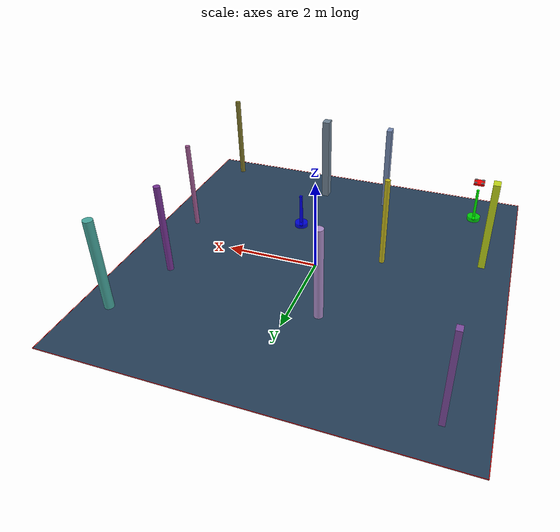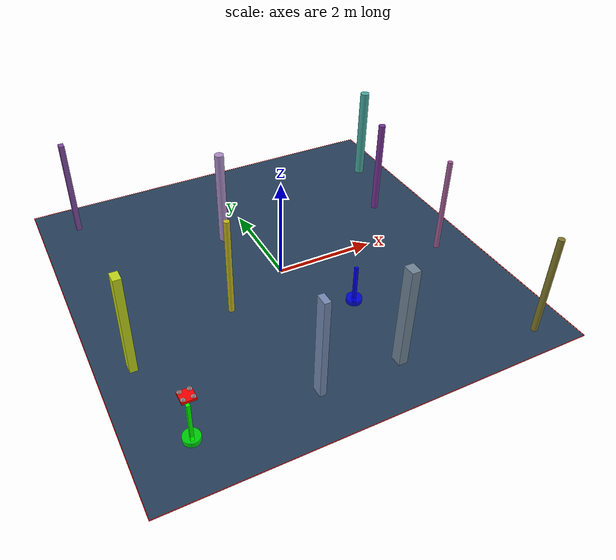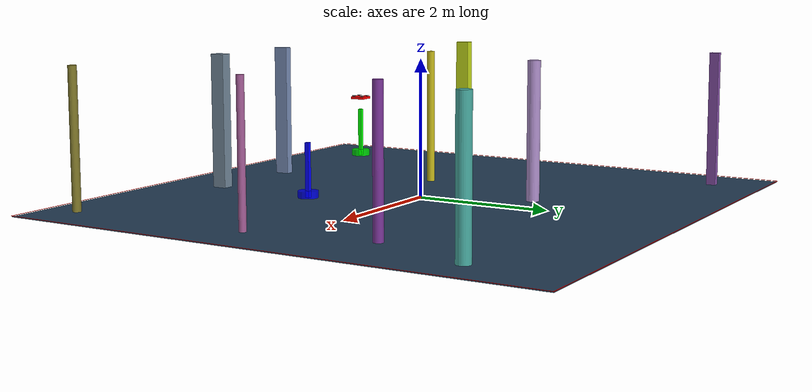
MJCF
<?xml version='1.0' encoding='utf-8'?>
<mujoco model="complex_uav_env">
  <compiler angle="degree" coordinate="local" inertiafromgeom="true" />
  <option integrator="RK4" timestep="0.01" />

  <visual>
    <headlight diffuse="0.6 0.6 0.6" ambient="0.3 0.3 0.3" />
    <rgba haze="0.15 0.25 0.35 1" />
    <global offwidth="2560" offheight="1440" />
  </visual>

  <asset>
    <texture type="skybox" builtin="gradient" rgb1="0.3 0.5 0.7" rgb2="0 0 0" width="512" height="3072" />
    <texture name="grid" type="2d" builtin="checker" rgb1="0.1 0.2 0.3" rgb2="0.2 0.3 0.4" width="512" height="512" />
    <material name="grid" texture="grid" texrepeat="1 1" />
  </asset>

  <worldbody>

    <geom name="ground" type="plane" size="4.0 4.0 0.1" material="grid" />
    <light name="light1" pos="0 0 4" dir="0 0 -1" diffuse="1 1 1" />

    <geom name="start_marker" type="cylinder" size="0.15 0.05" pos="-3.0 -3.0 0.05" rgba="0 1 0 0.8" />
    <geom name="start_pole" type="box" size="0.03 0.03 0.4" pos="-3.0 -3.0 0.4" rgba="0 1 0 1" />

    <geom name="goal_marker" type="cylinder" size="0.15 0.05" pos="0.8281205092183255 -1.3951606934058274 0.05" rgba="0 0 1 0.8" />
    <geom name="goal_pole" type="box" size="0.03 0.03 0.4" pos="0.8281205092183255 -1.3951606934058274 0.4" rgba="0 0 1 1" />

    <body name="chassis" pos="-3.0 -3.0 1.0">
      <joint type="free" name="root" />
      <geom type="box" size="0.12 0.12 0.02" rgba="1.0 0.0 0.0 1.0" mass="0.8" />

      <geom type="box" size="0.08 0.01 0.005" pos="0 0 0.01" rgba="0.3 0.3 0.3 1" />
      <geom type="box" size="0.01 0.08 0.005" pos="0 0 0.01" rgba="0.3 0.3 0.3 1" />

      <geom type="cylinder" size="0.015 0.02" pos="0.08 0.08 0.015" rgba="0.2 0.2 0.2 1" />
      <geom type="cylinder" size="0.015 0.02" pos="-0.08 0.08 0.015" rgba="0.2 0.2 0.2 1" />
      <geom type="cylinder" size="0.015 0.02" pos="0.08 -0.08 0.015" rgba="0.2 0.2 0.2 1" />
      <geom type="cylinder" size="0.015 0.02" pos="-0.08 -0.08 0.015" rgba="0.2 0.2 0.2 1" />

      <geom type="cylinder" size="0.04 0.002" pos="0.08 0.08 0.035" rgba="0.7 0.7 0.7 0.8" />
      <geom type="cylinder" size="0.04 0.002" pos="-0.08 0.08 0.035" rgba="0.7 0.7 0.7 0.8" />
      <geom type="cylinder" size="0.04 0.002" pos="0.08 -0.08 0.035" rgba="0.7 0.7 0.7 0.8" />
      <geom type="cylinder" size="0.04 0.002" pos="-0.08 -0.08 0.035" rgba="0.7 0.7 0.7 0.8" />

      <site name="motor1" pos="0.08 0.08 0" size="0.01" />
      <site name="motor2" pos="-0.08 0.08 0" size="0.01" />
      <site name="motor3" pos="0.08 -0.08 0" size="0.01" />
      <site name="motor4" pos="-0.08 -0.08 0" size="0.01" />
    </body>
    <geom name="test_obs_0" type="cylinder" size="0.06130281912497063 1.0" pos="3.3160917500488427 -3.47887847183197 1.0" rgba="0.5031662517379328 0.4713770042619775 0.1682634420726541 1.0" />
    <geom name="test_obs_1" type="box" size="0.07222406594024591 0.10694347128615876 1.0" pos="-3.3785124066938 -1.1730821596264045 1.0" rgba="0.7668028873578718 0.8533633828381662 0.10175249953060428 1.0" />
    <geom name="test_obs_2" type="box" size="0.05921414957772388 0.10961580242001345 1.0" pos="-0.8059842315878085 -3.0271372590613446 1.0" rgba="0.4630456771741216 0.546570597392731 0.7074104259914211 1.0" />
    <geom name="test_obs_3" type="cylinder" size="0.09314080627151403 1.0" pos="-0.5825324886203239 1.4991817989673137 1.0" rgba="0.6754558332159492 0.5552729317030834 0.7863294806962702 1.0" />
    <geom name="test_obs_4" type="cylinder" size="0.09778578287906854 1.0" pos="3.378811978132226 2.5732553580394173 1.0" rgba="0.2807059062546934 0.6657176148310182 0.6254681030173757 1.0" />
    <geom name="test_obs_5" type="cylinder" size="0.0521294857405055 1.0" pos="3.2268097913772835 -0.7055364870506216 1.0" rgba="0.6379621243014293 0.3599376277366696 0.5831412142873579 1.0" />
    <geom name="test_obs_6" type="cylinder" size="0.07014080839215639 1.0" pos="2.882321172999398 1.1116118085968936 1.0" rgba="0.4728013279196651 0.20473427514260606 0.5899524212808439 1.0" />
    <geom name="test_obs_7" type="box" size="0.0844610456803997 0.10917852737695823 1.0" pos="0.7419841228675061 -3.028010355740438 1.0" rgba="0.444901209921735 0.5237583332255332 0.5938341936000072 1.0" />
    <geom name="test_obs_8" type="cylinder" size="0.056152476307366916 1.0" pos="-1.3164628112628742 -0.6061903496143455 1.0" rgba="0.7712429241964628 0.7197971563646716 0.10764834230970975 1.0" />
    <geom name="test_obs_9" type="box" size="0.05331472303427062 0.06892394902101712 1.0" pos="-3.2157062208734484 3.2210425590217215 1.0" rgba="0.5030928729001032 0.29776408269236476 0.6297565780520928 1.0" />
  <geom name="boundary_north" type="box" size="4.0 0.005 0.002" pos="0 4.0 0.002" rgba="1.0 0.0 0.0 1.0" /><geom name="boundary_south" type="box" size="4.0 0.005 0.002" pos="0 -4.0 0.002" rgba="1.0 0.0 0.0 1.0" /><geom name="boundary_east" type="box" size="0.005 4.0 0.002" pos="4.0 0 0.002" rgba="1.0 0.0 0.0 1.0" /><geom name="boundary_west" type="box" size="0.005 4.0 0.002" pos="-4.0 0 0.002" rgba="1.0 0.0 0.0 1.0" /></worldbody>

  <actuator>
    <motor name="m1" gear="0 0 1 0 0 0" site="motor1" />
    <motor name="m2" gear="0 0 1 0 0 0" site="motor2" />
    <motor name="m3" gear="0 0 1 0 0 0" site="motor3" />
    <motor name="m4" gear="0 0 1 0 0 0" site="motor4" />
  </actuator>
</mujoco>
